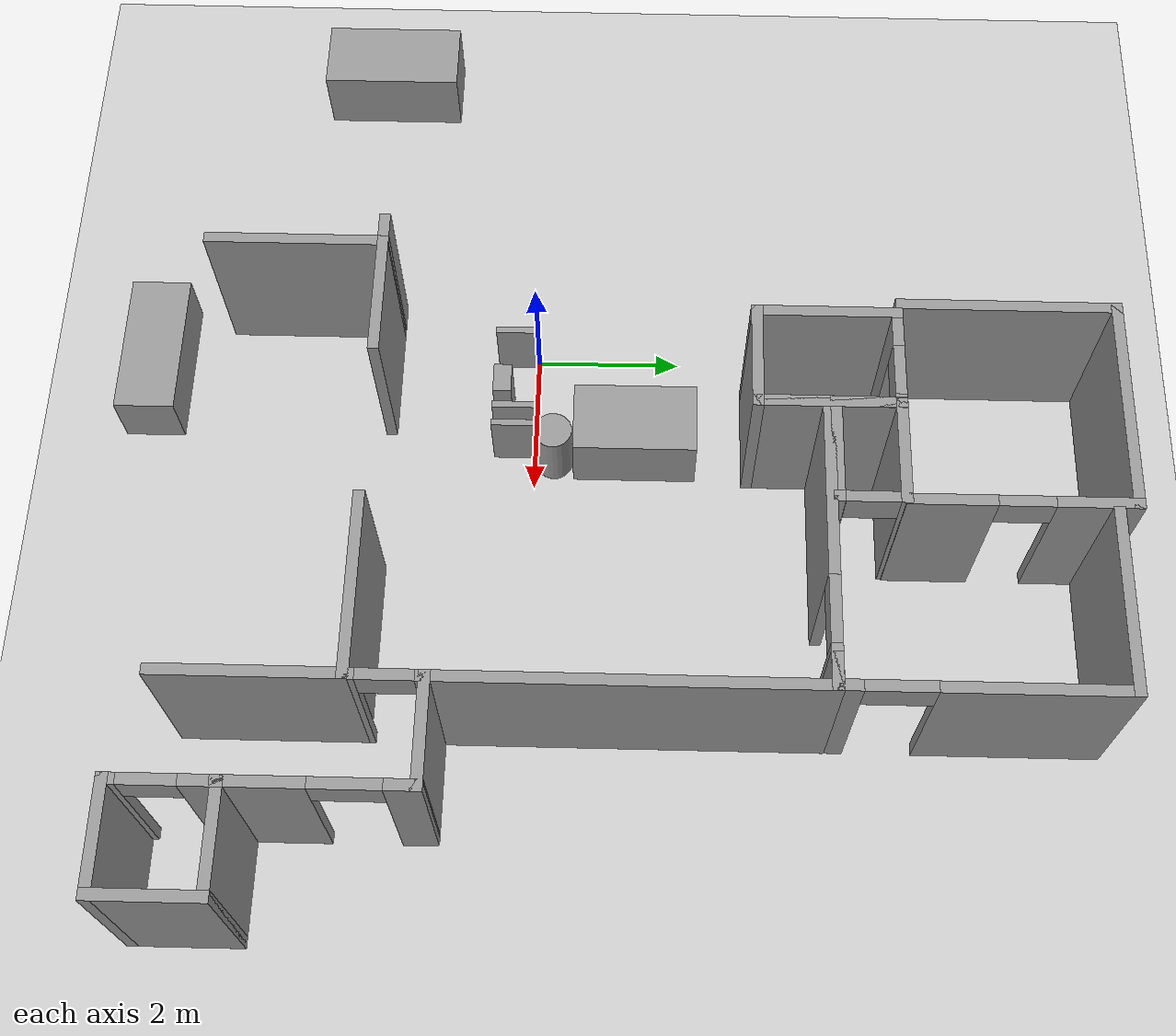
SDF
<sdf version="1.9">
 <world name="default">
  <model name="ground_plane">
   <static>true</static>
   <link name="link">
    <collision name="collision">
     <geometry><plane><normal>0 0 1</normal><size>100 100</size></plane></geometry>
     <surface><friction><ode><mu>100</mu><mu2>50</mu2></ode></friction></surface>
    </collision>
    <visual name="visual">
     <cast_shadows>false</cast_shadows>
     <geometry><plane><normal>0 0 1</normal><size>100 100</size></plane></geometry>
     <material>
      <script><uri>file://media/materials/scripts/gazebo.material</uri><name>Gazebo/Grey</name></script>
     </material>
    </visual>
   </link>
  </model>
  <model name="cma_parede_t">
   <pose>0.15995500000000001 -3.2401599999999999 0 0 0 0</pose>
   <link name="Wall_15">
    <collision name="Wall_15_Collision">
     <geometry><box><size>2.5 0.14999999999999999 2.5</size></box></geometry>
     <pose>0 0 1.25 0 0 0</pose>
    </collision>
    <visual name="Wall_15_Visual">
     <pose>0 0 1.25 0 0 0</pose>
     <geometry><box><size>2.5 0.14999999999999999 2.5</size></box></geometry>
     <material>
      <script><uri>file://media/materials/scripts/gazebo.material</uri><name>Gazebo/Grey</name></script>
      <ambient>1 1 1 1</ambient>
     </material>
    </visual>
    <pose>-0.625 0 0 0 0 1.5708</pose>
   </link>
   <link name="Wall_16">
    <collision name="Wall_16_Collision">
     <geometry><box><size>0.5 0.14999999999999999 2.5</size></box></geometry>
     <pose>0 0 1.25 0 0 0</pose>
    </collision>
    <visual name="Wall_16_Visual">
     <pose>0 0 1.25 0 0 0</pose>
     <geometry><box><size>0.5 0.14999999999999999 2.5</size></box></geometry>
     <material>
      <script><uri>file://media/materials/scripts/gazebo.material</uri><name>Gazebo/Grey</name></script>
      <ambient>1 1 1 1</ambient>
     </material>
    </visual>
    <pose>-0.80000000000000004 1.175 0 0 0 3.1415899999999999</pose>
   </link>
   <link name="Wall_18">
    <collision name="Wall_18_Collision">
     <geometry><box><size>1.75 0.14999999999999999 2.5</size></box></geometry>
     <pose>0 0 1.25 0 0 0</pose>
    </collision>
    <visual name="Wall_18_Visual">
     <pose>0 0 1.25 0 0 0</pose>
     <geometry><box><size>1.75 0.14999999999999999 2.5</size></box></geometry>
     <material>
      <script><uri>file://media/materials/scripts/gazebo.material</uri><name>Gazebo/Grey</name></script>
      <ambient>1 1 1 1</ambient>
     </material>
    </visual>
    <pose>0.17499999999999999 1.175 0 0 0 0</pose>
   </link>
   <static>true</static>
  </model>
  <model name="cma_lavabo">
   <pose>7.7229700000000001 -4.0930200000000001 0 0 0 0</pose>
   <link name="Wall_4">
    <pose>-0.67500000000000004 0 0 0 0 1.5708</pose>
    <visual name="Wall_4_Visual_0">
     <pose>-0.63500000000000001 0 1.25 0 0 0</pose>
     <geometry><box><size>0.23000000000000001 0.14999999999999999 2.5</size></box></geometry>
     <material>
      <script><uri>file://media/materials/scripts/gazebo.material</uri><name>Gazebo/Grey</name></script>
      <ambient>1 1 1 1</ambient>
     </material>
    </visual>
    <collision name="Wall_4_Collision_0">
     <geometry><box><size>0.23000000000000001 0.14999999999999999 2.5</size></box></geometry>
     <pose>-0.63500000000000001 0 1.25 0 0 0</pose>
    </collision>
    <visual name="Wall_4_Visual_1">
     <pose>0.47999999999999998 0 1.25 0 0 0</pose>
     <geometry><box><size>0.54000000000000004 0.14999999999999999 2.5</size></box></geometry>
     <material>
      <script><uri>file://media/materials/scripts/gazebo.material</uri><name>Gazebo/Grey</name></script>
      <ambient>1 1 1 1</ambient>
     </material>
    </visual>
    <collision name="Wall_4_Collision_1">
     <geometry><box><size>0.54000000000000004 0.14999999999999999 2.5</size></box></geometry>
     <pose>0.47999999999999998 0 1.25 0 0 0</pose>
    </collision>
    <visual name="Wall_4_Visual_2">
     <pose>-0.155 0 2.25 0 0 0</pose>
     <geometry><box><size>0.72999999999999998 0.14999999999999999 0.5</size></box></geometry>
     <material>
      <script><uri>file://media/materials/scripts/gazebo.material</uri><name>Gazebo/Grey</name></script>
      <ambient>1 1 1 1</ambient>
     </material>
    </visual>
    <collision name="Wall_4_Collision_2">
     <geometry><box><size>0.72999999999999998 0.14999999999999999 0.5</size></box></geometry>
     <pose>-0.155 0 2.25 0 0 0</pose>
    </collision>
   </link>
   <link name="Wall_5">
    <collision name="Wall_5_Collision">
     <geometry><box><size>1.5 0.14999999999999999 2.5</size></box></geometry>
     <pose>0 0 1.25 0 0 0</pose>
    </collision>
    <visual name="Wall_5_Visual">
     <pose>0 0 1.25 0 0 0</pose>
     <geometry><box><size>1.5 0.14999999999999999 2.5</size></box></geometry>
     <material>
      <script><uri>file://media/materials/scripts/gazebo.material</uri><name>Gazebo/Grey</name></script>
      <ambient>1 1 1 1</ambient>
     </material>
    </visual>
    <pose>0 0.67500000000000004 0 0 0 0</pose>
   </link>
   <link name="Wall_6">
    <collision name="Wall_6_Collision">
     <geometry><box><size>1.5 0.14999999999999999 2.5</size></box></geometry>
     <pose>0 0 1.25 0 0 0</pose>
    </collision>
    <visual name="Wall_6_Visual">
     <pose>0 0 1.25 0 0 0</pose>
     <geometry><box><size>1.5 0.14999999999999999 2.5</size></box></geometry>
     <material>
      <script><uri>file://media/materials/scripts/gazebo.material</uri><name>Gazebo/Grey</name></script>
      <ambient>1 1 1 1</ambient>
     </material>
    </visual>
    <pose>0.67500000000000004 0 0 0 0 -1.5708</pose>
   </link>
   <link name="Wall_7">
    <collision name="Wall_7_Collision">
     <geometry><box><size>1.5 0.14999999999999999 2.5</size></box></geometry>
     <pose>0 0 1.25 0 0 0</pose>
    </collision>
    <visual name="Wall_7_Visual">
     <pose>0 0 1.25 0 0 0</pose>
     <geometry><box><size>1.5 0.14999999999999999 2.5</size></box></geometry>
     <material>
      <script><uri>file://media/materials/scripts/gazebo.material</uri><name>Gazebo/Grey</name></script>
      <ambient>1 1 1 1</ambient>
     </material>
    </visual>
    <pose>0 -0.67500000000000004 0 0 0 3.1415899999999999</pose>
   </link>
   <static>true</static>
  </model>
  <model name="cma_L2">
   <pose>4.5168299999999997 -3.24587 0 0 0 0</pose>
   <link name="Wall_10">
    <collision name="Wall_10_Collision">
     <geometry><box><size>2.5 0.14999999999999999 2.5</size></box></geometry>
     <pose>0 0 1.25 0 0 0</pose>
    </collision>
    <visual name="Wall_10_Visual">
     <pose>0 0 1.25 0 0 0</pose>
     <geometry><box><size>2.5 0.14999999999999999 2.5</size></box></geometry>
     <material>
      <script><uri>file://media/materials/scripts/gazebo.material</uri><name>Gazebo/Grey</name></script>
      <ambient>1 1 1 1</ambient>
     </material>
    </visual>
    <pose>1.175 0 0 0 0 -1.5708</pose>
   </link>
   <link name="Wall_9">
    <collision name="Wall_9_Collision">
     <geometry><box><size>2.5 0.14999999999999999 2.5</size></box></geometry>
     <pose>0 0 1.25 0 0 0</pose>
    </collision>
    <visual name="Wall_9_Visual">
     <pose>0 0 1.25 0 0 0</pose>
     <geometry><box><size>2.5 0.14999999999999999 2.5</size></box></geometry>
     <material>
      <script><uri>file://media/materials/scripts/gazebo.material</uri><name>Gazebo/Grey</name></script>
      <ambient>1 1 1 1</ambient>
     </material>
    </visual>
    <pose>0 1.175 0 0 0 0</pose>
   </link>
   <static>true</static>
  </model>
  <model name="cma_L3">
   <pose>6.3722099999999999 -2.2602199999999999 0 0 0 0</pose>
   <link name="Wall_12">
    <pose>-0.67500000000000004 0.75 0 0 0 1.5708</pose>
    <visual name="Wall_12_Visual_0">
     <pose>-0.46000000000000002 0 1.25 0 0 0</pose>
     <geometry><box><size>0.080000000000000002 0.14999999999999999 2.5</size></box></geometry>
     <material>
      <script><uri>file://media/materials/scripts/gazebo.material</uri><name>Gazebo/Grey</name></script>
      <ambient>1 1 1 1</ambient>
     </material>
    </visual>
    <collision name="Wall_12_Collision_0">
     <geometry><box><size>0.080000000000000002 0.14999999999999999 2.5</size></box></geometry>
     <pose>-0.46000000000000002 0 1.25 0 0 0</pose>
    </collision>
    <visual name="Wall_12_Visual_1">
     <pose>0.40500000000000003 0 1.25 0 0 0</pose>
     <geometry><box><size>0.19 0.14999999999999999 2.5</size></box></geometry>
     <material>
      <script><uri>file://media/materials/scripts/gazebo.material</uri><name>Gazebo/Grey</name></script>
      <ambient>1 1 1 1</ambient>
     </material>
    </visual>
    <collision name="Wall_12_Collision_1">
     <geometry><box><size>0.19 0.14999999999999999 2.5</size></box></geometry>
     <pose>0.40500000000000003 0 1.25 0 0 0</pose>
    </collision>
    <visual name="Wall_12_Visual_2">
     <pose>-0.055 0 2.25 0 0 0</pose>
     <geometry><box><size>0.72999999999999998 0.14999999999999999 0.5</size></box></geometry>
     <material>
      <script><uri>file://media/materials/scripts/gazebo.material</uri><name>Gazebo/Grey</name></script>
      <ambient>1 1 1 1</ambient>
     </material>
    </visual>
    <collision name="Wall_12_Collision_2">
     <geometry><box><size>0.72999999999999998 0.14999999999999999 0.5</size></box></geometry>
     <pose>-0.055 0 2.25 0 0 0</pose>
    </collision>
   </link>
   <link name="Wall_13">
    <collision name="Wall_13_Collision">
     <geometry><box><size>1.5 0.14999999999999999 2.5</size></box></geometry>
     <pose>0 0 1.25 0 0 0</pose>
    </collision>
    <visual name="Wall_13_Visual">
     <pose>0 0 1.25 0 0 0</pose>
     <geometry><box><size>1.5 0.14999999999999999 2.5</size></box></geometry>
     <material>
      <script><uri>file://media/materials/scripts/gazebo.material</uri><name>Gazebo/Grey</name></script>
      <ambient>1 1 1 1</ambient>
     </material>
    </visual>
    <pose>0 1.175 0 0 0 0</pose>
   </link>
   <link name="Wall_14">
    <pose>0.67500000000000004 0 0 0 0 -1.5708</pose>
    <visual name="Wall_14_Visual_0">
     <pose>-1.0175000000000001 0 1.25 0 0 0</pose>
     <geometry><box><size>0.46500000000000002 0.14999999999999999 2.5</size></box></geometry>
     <material>
      <script><uri>file://media/materials/scripts/gazebo.material</uri><name>Gazebo/Grey</name></script>
      <ambient>1 1 1 1</ambient>
     </material>
    </visual>
    <collision name="Wall_14_Collision_0">
     <geometry><box><size>0.46500000000000002 0.14999999999999999 2.5</size></box></geometry>
     <pose>-1.0175000000000001 0 1.25 0 0 0</pose>
    </collision>
    <visual name="Wall_14_Visual_1">
     <pose>0.6825 0 1.25 0 0 0</pose>
     <geometry><box><size>1.135 0.14999999999999999 2.5</size></box></geometry>
     <material>
      <script><uri>file://media/materials/scripts/gazebo.material</uri><name>Gazebo/Grey</name></script>
      <ambient>1 1 1 1</ambient>
     </material>
    </visual>
    <collision name="Wall_14_Collision_1">
     <geometry><box><size>1.135 0.14999999999999999 2.5</size></box></geometry>
     <pose>0.6825 0 1.25 0 0 0</pose>
    </collision>
    <visual name="Wall_14_Visual_2">
     <pose>-0.33500000000000002 0 2.25 0 0 0</pose>
     <geometry><box><size>0.90000000000000002 0.14999999999999999 0.5</size></box></geometry>
     <material>
      <script><uri>file://media/materials/scripts/gazebo.material</uri><name>Gazebo/Grey</name></script>
      <ambient>1 1 1 1</ambient>
     </material>
    </visual>
    <collision name="Wall_14_Collision_2">
     <geometry><box><size>0.90000000000000002 0.14999999999999999 0.5</size></box></geometry>
     <pose>-0.33500000000000002 0 2.25 0 0 0</pose>
    </collision>
   </link>
   <static>true</static>
  </model>
  <model name="cma_L5">
   <pose>3.77502 1.45512 0 0 0 0</pose>
   <link name="Wall_0">
    <collision name="Wall_0_Collision">
     <geometry><box><size>1 0.14999999999999999 2.5</size></box></geometry>
     <pose>0 0 1.25 0 0 0</pose>
    </collision>
    <visual name="Wall_0_Visual">
     <pose>0 0 1.25 0 0 0</pose>
     <geometry><box><size>1 0.14999999999999999 2.5</size></box></geometry>
     <material>
      <script><uri>file://media/materials/scripts/gazebo.material</uri><name>Gazebo/Grey</name></script>
      <ambient>1 1 1 1</ambient>
     </material>
    </visual>
    <pose>-1.925 2 0 0 0 1.5708</pose>
   </link>
   <link name="Wall_1">
    <pose>0 2.4249999999999998 0 0 0 0</pose>
    <visual name="Wall_1_Visual_0">
     <pose>-0.75249999999999995 0 1.25 0 0 0</pose>
     <geometry><box><size>2.4950000000000001 0.14999999999999999 2.5</size></box></geometry>
     <material>
      <script><uri>file://media/materials/scripts/gazebo.material</uri><name>Gazebo/Grey</name></script>
      <ambient>1 1 1 1</ambient>
     </material>
    </visual>
    <collision name="Wall_1_Collision_0">
     <geometry><box><size>2.4950000000000001 0.14999999999999999 2.5</size></box></geometry>
     <pose>-0.75249999999999995 0 1.25 0 0 0</pose>
    </collision>
    <visual name="Wall_1_Visual_1">
     <pose>1.6975 0 1.25 0 0 0</pose>
     <geometry><box><size>0.60499999999999998 0.14999999999999999 2.5</size></box></geometry>
     <material>
      <script><uri>file://media/materials/scripts/gazebo.material</uri><name>Gazebo/Grey</name></script>
      <ambient>1 1 1 1</ambient>
     </material>
    </visual>
    <collision name="Wall_1_Collision_1">
     <geometry><box><size>0.60499999999999998 0.14999999999999999 2.5</size></box></geometry>
     <pose>1.6975 0 1.25 0 0 0</pose>
    </collision>
    <visual name="Wall_1_Visual_2">
     <pose>0.94499999999999995 0 2.25 0 0 0</pose>
     <geometry><box><size>0.90000000000000002 0.14999999999999999 0.5</size></box></geometry>
     <material>
      <script><uri>file://media/materials/scripts/gazebo.material</uri><name>Gazebo/Grey</name></script>
      <ambient>1 1 1 1</ambient>
     </material>
    </visual>
    <collision name="Wall_1_Collision_2">
     <geometry><box><size>0.90000000000000002 0.14999999999999999 0.5</size></box></geometry>
     <pose>0.94499999999999995 0 2.25 0 0 0</pose>
    </collision>
   </link>
   <link name="Wall_3">
    <collision name="Wall_3_Collision">
     <geometry><box><size>5 0.14999999999999999 2.5</size></box></geometry>
     <pose>0 0 1.25 0 0 0</pose>
    </collision>
    <visual name="Wall_3_Visual">
     <pose>0 0 1.25 0 0 0</pose>
     <geometry><box><size>5 0.14999999999999999 2.5</size></box></geometry>
     <material>
      <script><uri>file://media/materials/scripts/gazebo.material</uri><name>Gazebo/Grey</name></script>
      <ambient>1 1 1 1</ambient>
     </material>
    </visual>
    <pose>1.925 0 0 0 0 -1.5708</pose>
   </link>
   <static>true</static>
  </model>
  <model name="cma_dispensa">
   <pose>2.5258400000000001 4.4011899999999997 0 0 0 0</pose>
   <link name="Wall_5">
    <collision name="Wall_5_Collision">
     <geometry><box><size>1 0.14999999999999999 2.5</size></box></geometry>
     <pose>0 0 1.25 0 0 0</pose>
    </collision>
    <visual name="Wall_5_Visual">
     <pose>0 0 1.25 0 0 0</pose>
     <geometry><box><size>1 0.14999999999999999 2.5</size></box></geometry>
     <material>
      <script><uri>file://media/materials/scripts/gazebo.material</uri><name>Gazebo/Grey</name></script>
      <ambient>1 1 1 1</ambient>
     </material>
    </visual>
    <pose>-0.67500000000000004 0 0 0 0 1.5708</pose>
   </link>
   <link name="Wall_6">
    <collision name="Wall_6_Collision">
     <geometry><box><size>1.5 0.14999999999999999 2.5</size></box></geometry>
     <pose>0 0 1.25 0 0 0</pose>
    </collision>
    <visual name="Wall_6_Visual">
     <pose>0 0 1.25 0 0 0</pose>
     <geometry><box><size>1.5 0.14999999999999999 2.5</size></box></geometry>
     <material>
      <script><uri>file://media/materials/scripts/gazebo.material</uri><name>Gazebo/Grey</name></script>
      <ambient>1 1 1 1</ambient>
     </material>
    </visual>
    <pose>0 0.42499999999999999 0 0 0 0</pose>
   </link>
   <link name="Wall_7">
    <pose>0.67500000000000004 0 0 0 0 -1.5708</pose>
    <visual name="Wall_7_Visual_0">
     <pose>-0.42749999999999999 0 1.25 0 0 0</pose>
     <geometry><box><size>0.14499999999999999 0.14999999999999999 2.5</size></box></geometry>
     <material>
      <script><uri>file://media/materials/scripts/gazebo.material</uri><name>Gazebo/Grey</name></script>
      <ambient>1 1 1 1</ambient>
     </material>
    </visual>
    <collision name="Wall_7_Collision_0">
     <geometry><box><size>0.14499999999999999 0.14999999999999999 2.5</size></box></geometry>
     <pose>-0.42749999999999999 0 1.25 0 0 0</pose>
    </collision>
    <visual name="Wall_7_Visual_1">
     <pose>0.42249999999999999 0 1.25 0 0 0</pose>
     <geometry><box><size>0.155 0.14999999999999999 2.5</size></box></geometry>
     <material>
      <script><uri>file://media/materials/scripts/gazebo.material</uri><name>Gazebo/Grey</name></script>
      <ambient>1 1 1 1</ambient>
     </material>
    </visual>
    <collision name="Wall_7_Collision_1">
     <geometry><box><size>0.155 0.14999999999999999 2.5</size></box></geometry>
     <pose>0.42249999999999999 0 1.25 0 0 0</pose>
    </collision>
    <visual name="Wall_7_Visual_2">
     <pose>-0.0050000000000000001 0 2.25 0 0 0</pose>
     <geometry><box><size>0.69999999999999996 0.14999999999999999 0.5</size></box></geometry>
     <material>
      <script><uri>file://media/materials/scripts/gazebo.material</uri><name>Gazebo/Grey</name></script>
      <ambient>1 1 1 1</ambient>
     </material>
    </visual>
    <collision name="Wall_7_Collision_2">
     <geometry><box><size>0.69999999999999996 0.14999999999999999 0.5</size></box></geometry>
     <pose>-0.0050000000000000001 0 2.25 0 0 0</pose>
    </collision>
   </link>
   <link name="Wall_8">
    <collision name="Wall_8_Collision">
     <geometry><box><size>1.5 0.14999999999999999 2.5</size></box></geometry>
     <pose>0 0 1.25 0 0 0</pose>
    </collision>
    <visual name="Wall_8_Visual">
     <pose>0 0 1.25 0 0 0</pose>
     <geometry><box><size>1.5 0.14999999999999999 2.5</size></box></geometry>
     <material>
      <script><uri>file://media/materials/scripts/gazebo.material</uri><name>Gazebo/Grey</name></script>
      <ambient>1 1 1 1</ambient>
     </material>
    </visual>
    <pose>0 -0.42499999999999999 0 0 0 3.1415899999999999</pose>
   </link>
   <static>true</static>
  </model>
  <model name="cma_banheiro_e">
   <pose>1.1835800000000001 3.89879 0 0 0 0</pose>
   <link name="Wall_10">
    <collision name="Wall_10_Collision">
     <geometry><box><size>1.5 0.14999999999999999 2.5</size></box></geometry>
     <pose>0 0 1.25 0 0 0</pose>
    </collision>
    <visual name="Wall_10_Visual">
     <pose>0 0 1.25 0 0 0</pose>
     <geometry><box><size>1.5 0.14999999999999999 2.5</size></box></geometry>
     <material>
      <script><uri>file://media/materials/scripts/gazebo.material</uri><name>Gazebo/Grey</name></script>
      <ambient>1 1 1 1</ambient>
     </material>
    </visual>
    <pose>0 -0.92500000000000004 0 0 0 3.1415899999999999</pose>
   </link>
   <link name="Wall_11">
    <collision name="Wall_11_Collision">
     <geometry><box><size>2 0.14999999999999999 2.5</size></box></geometry>
     <pose>0 0 1.25 0 0 0</pose>
    </collision>
    <visual name="Wall_11_Visual">
     <pose>0 0 1.25 0 0 0</pose>
     <geometry><box><size>2 0.14999999999999999 2.5</size></box></geometry>
     <material>
      <script><uri>file://media/materials/scripts/gazebo.material</uri><name>Gazebo/Grey</name></script>
      <ambient>1 1 1 1</ambient>
     </material>
    </visual>
    <pose>-0.67500000000000004 0 0 0 0 1.5708</pose>
   </link>
   <link name="Wall_12">
    <pose>0 0.92500000000000004 0 0 0 0</pose>
    <visual name="Wall_12_Visual_0">
     <pose>-0.46250000000000002 0 1.25 0 0 0</pose>
     <geometry><box><size>0.57499999999999996 0.14999999999999999 2.5</size></box></geometry>
     <material>
      <script><uri>file://media/materials/scripts/gazebo.material</uri><name>Gazebo/Grey</name></script>
      <ambient>1 1 1 1</ambient>
     </material>
    </visual>
    <collision name="Wall_12_Collision_0">
     <geometry><box><size>0.57499999999999996 0.14999999999999999 2.5</size></box></geometry>
     <pose>-0.46250000000000002 0 1.25 0 0 0</pose>
    </collision>
    <visual name="Wall_12_Visual_1">
     <pose>0.64749999999999996 0 1.25 0 0 0</pose>
     <geometry><box><size>0.20499999999999999 0.14999999999999999 2.5</size></box></geometry>
     <material>
      <script><uri>file://media/materials/scripts/gazebo.material</uri><name>Gazebo/Grey</name></script>
      <ambient>1 1 1 1</ambient>
     </material>
    </visual>
    <collision name="Wall_12_Collision_1">
     <geometry><box><size>0.20499999999999999 0.14999999999999999 2.5</size></box></geometry>
     <pose>0.64749999999999996 0 1.25 0 0 0</pose>
    </collision>
    <visual name="Wall_12_Visual_2">
     <pose>0.185 0 2.25 0 0 0</pose>
     <geometry><box><size>0.71999999999999997 0.14999999999999999 0.5</size></box></geometry>
     <material>
      <script><uri>file://media/materials/scripts/gazebo.material</uri><name>Gazebo/Grey</name></script>
      <ambient>1 1 1 1</ambient>
     </material>
    </visual>
    <collision name="Wall_12_Collision_2">
     <geometry><box><size>0.71999999999999997 0.14999999999999999 0.5</size></box></geometry>
     <pose>0.185 0 2.25 0 0 0</pose>
    </collision>
   </link>
   <link name="Wall_13">
    <collision name="Wall_13_Collision">
     <geometry><box><size>2 0.14999999999999999 2.5</size></box></geometry>
     <pose>0 0 1.25 0 0 0</pose>
    </collision>
    <visual name="Wall_13_Visual">
     <pose>0 0 1.25 0 0 0</pose>
     <geometry><box><size>2 0.14999999999999999 2.5</size></box></geometry>
     <material>
      <script><uri>file://media/materials/scripts/gazebo.material</uri><name>Gazebo/Grey</name></script>
      <ambient>1 1 1 1</ambient>
     </material>
    </visual>
    <pose>0.67500000000000004 0 0 0 0 -1.5708</pose>
   </link>
   <static>true</static>
  </model>
  <model name="cma_qe">
   <pose>1.7956099999999999 6.3122800000000003 0 0 0 0</pose>
   <link name="Wall_15">
    <collision name="Wall_15_Collision">
     <geometry><box><size>3 0.14999999999999999 2.5</size></box></geometry>
     <pose>0 0 1.25 0 0 0</pose>
    </collision>
    <visual name="Wall_15_Visual">
     <pose>0 0 1.25 0 0 0</pose>
     <geometry><box><size>3 0.14999999999999999 2.5</size></box></geometry>
     <material>
      <script><uri>file://media/materials/scripts/gazebo.material</uri><name>Gazebo/Grey</name></script>
      <ambient>1 1 1 1</ambient>
     </material>
    </visual>
    <pose>-1.425 0 0 0 0 1.5708</pose>
   </link>
   <link name="Wall_16">
    <collision name="Wall_16_Collision">
     <geometry><box><size>3 0.14999999999999999 2.5</size></box></geometry>
     <pose>0 0 1.25 0 0 0</pose>
    </collision>
    <visual name="Wall_16_Visual">
     <pose>0 0 1.25 0 0 0</pose>
     <geometry><box><size>3 0.14999999999999999 2.5</size></box></geometry>
     <material>
      <script><uri>file://media/materials/scripts/gazebo.material</uri><name>Gazebo/Grey</name></script>
      <ambient>1 1 1 1</ambient>
     </material>
    </visual>
    <pose>0 1.425 0 0 0 0</pose>
   </link>
   <link name="Wall_17">
    <pose>1.425 0 0 0 0 -1.5708</pose>
    <visual name="Wall_17_Visual_0">
     <pose>-0.94499999999999995 0 1.25 0 0 0</pose>
     <geometry><box><size>1.1100000000000001 0.14999999999999999 2.5</size></box></geometry>
     <material>
      <script><uri>file://media/materials/scripts/gazebo.material</uri><name>Gazebo/Grey</name></script>
      <ambient>1 1 1 1</ambient>
     </material>
    </visual>
    <collision name="Wall_17_Collision_0">
     <geometry><box><size>1.1100000000000001 0.14999999999999999 2.5</size></box></geometry>
     <pose>-0.94499999999999995 0 1.25 0 0 0</pose>
    </collision>
    <visual name="Wall_17_Visual_1">
     <pose>0.92000000000000004 0 1.25 0 0 0</pose>
     <geometry><box><size>1.1599999999999999 0.14999999999999999 2.5</size></box></geometry>
     <material>
      <script><uri>file://media/materials/scripts/gazebo.material</uri><name>Gazebo/Grey</name></script>
      <ambient>1 1 1 1</ambient>
     </material>
    </visual>
    <collision name="Wall_17_Collision_1">
     <geometry><box><size>1.1599999999999999 0.14999999999999999 2.5</size></box></geometry>
     <pose>0.92000000000000004 0 1.25 0 0 0</pose>
    </collision>
    <visual name="Wall_17_Visual_2">
     <pose>-0.025000000000000001 0 2.25 0 0 0</pose>
     <geometry><box><size>0.72999999999999998 0.14999999999999999 0.5</size></box></geometry>
     <material>
      <script><uri>file://media/materials/scripts/gazebo.material</uri><name>Gazebo/Grey</name></script>
      <ambient>1 1 1 1</ambient>
     </material>
    </visual>
    <collision name="Wall_17_Collision_2">
     <geometry><box><size>0.72999999999999998 0.14999999999999999 0.5</size></box></geometry>
     <pose>-0.025000000000000001 0 2.25 0 0 0</pose>
    </collision>
   </link>
   <static>true</static>
  </model>
  <model name="cma_area2">
   <pose>4.5227500000000003 5.6786199999999996 0 0 0 0</pose>
   <link name="Wall_23">
    <collision name="Wall_23_Collision">
     <geometry><box><size>2.5 0.14999999999999999 2.5</size></box></geometry>
     <pose>0 0 1.25 0 0 0</pose>
    </collision>
    <visual name="Wall_23_Visual">
     <pose>0 0 1.25 0 0 0</pose>
     <geometry><box><size>2.5 0.14999999999999999 2.5</size></box></geometry>
     <material>
      <script><uri>file://media/materials/scripts/gazebo.material</uri><name>Gazebo/Grey</name></script>
      <ambient>1 1 1 1</ambient>
     </material>
    </visual>
    <pose>0 1.8 0 0 0 0</pose>
   </link>
   <link name="Wall_24">
    <pose>1.175 0 0 0 0 -1.5708</pose>
    <visual name="Wall_24_Visual_0">
     <pose>-0.64249999999999996 0 1.25 0 0 0</pose>
     <geometry><box><size>2.4649999999999999 0.14999999999999999 2.5</size></box></geometry>
     <material>
      <script><uri>file://media/materials/scripts/gazebo.material</uri><name>Gazebo/Grey</name></script>
      <ambient>1 1 1 1</ambient>
     </material>
    </visual>
    <collision name="Wall_24_Collision_0">
     <geometry><box><size>2.4649999999999999 0.14999999999999999 2.5</size></box></geometry>
     <pose>-0.64249999999999996 0 1.25 0 0 0</pose>
    </collision>
    <visual name="Wall_24_Visual_1">
     <pose>1.6825000000000001 0 1.25 0 0 0</pose>
     <geometry><box><size>0.38500000000000001 0.14999999999999999 2.5</size></box></geometry>
     <material>
      <script><uri>file://media/materials/scripts/gazebo.material</uri><name>Gazebo/Grey</name></script>
      <ambient>1 1 1 1</ambient>
     </material>
    </visual>
    <collision name="Wall_24_Collision_1">
     <geometry><box><size>0.38500000000000001 0.14999999999999999 2.5</size></box></geometry>
     <pose>1.6825000000000001 0 1.25 0 0 0</pose>
    </collision>
    <visual name="Wall_24_Visual_2">
     <pose>1.04 0 2.25 0 0 0</pose>
     <geometry><box><size>0.90000000000000002 0.14999999999999999 0.5</size></box></geometry>
     <material>
      <script><uri>file://media/materials/scripts/gazebo.material</uri><name>Gazebo/Grey</name></script>
      <ambient>1 1 1 1</ambient>
     </material>
    </visual>
    <collision name="Wall_24_Collision_2">
     <geometry><box><size>0.90000000000000002 0.14999999999999999 0.5</size></box></geometry>
     <pose>1.04 0 2.25 0 0 0</pose>
    </collision>
   </link>
   <link name="Wall_25">
    <collision name="Wall_25_Collision">
     <geometry><box><size>0.5 0.14999999999999999 2.5</size></box></geometry>
     <pose>0 0 1.25 0 0 0</pose>
    </collision>
    <visual name="Wall_25_Visual">
     <pose>0 0 1.25 0 0 0</pose>
     <geometry><box><size>0.5 0.14999999999999999 2.5</size></box></geometry>
     <material>
      <script><uri>file://media/materials/scripts/gazebo.material</uri><name>Gazebo/Grey</name></script>
      <ambient>1 1 1 1</ambient>
     </material>
    </visual>
    <pose>1 -1.8 0 0 0 3.1415899999999999</pose>
   </link>
   <static>true</static>
  </model>
  <model name="cma_mesa_pc">
   <link name="link_0">
    <pose>-1.3653299999999999 -0.59986600000000001 0 0 0 0</pose>
    <inertial>
     <mass>0.055153899999999999</mass>
     <inertia>
      <ixx>0.00617776</ixx>
      <ixy>0</ixy>
      <ixz>0</ixz>
      <iyy>0.0046367999999999999</iyy>
      <iyz>0</iyz>
      <izz>0.00162222</izz>
     </inertia>
    </inertial>
    <visual name="visual">
     <geometry><box><size>0.094007999999999994 0.58662599999999998 1</size></box></geometry>
     <material>
      <lighting>true</lighting>
      <script><uri>file://media/materials/scripts/gazebo.material</uri><name>Gazebo/Grey</name></script>
      <ambient>0.300000012 0.300000012 0.300000012 1</ambient>
      <diffuse>0.699999988 0.699999988 0.699999988 1</diffuse>
      <specular>0.00999999978 0.00999999978 0.00999999978 1</specular>
      <emissive>0 0 0 1</emissive>
     </material>
    </visual>
    <collision name="collision">
     <geometry><box><size>0.094007999999999994 0.58662599999999998 1</size></box></geometry>
     <surface>
      <friction>
       <ode><mu>1</mu><mu2>1</mu2><fdir1>0 0 0</fdir1><slip1>0</slip1><slip2>0</slip2></ode>
       <torsional>
        <coefficient>1</coefficient>
        <patch_radius>0</patch_radius>
        <surface_radius>0</surface_radius>
        <use_patch_radius>true</use_patch_radius>
        <ode><slip>0</slip></ode>
       </torsional>
      </friction>
      <bounce><restitution_coefficient>0</restitution_coefficient><threshold>1000000</threshold></bounce>
      <contact>
       <collide_without_contact>false</collide_without_contact>
       <collide_without_contact_bitmask>1</collide_without_contact_bitmask>
       <collide_bitmask>1</collide_bitmask>
       <ode>
        <soft_cfm>0</soft_cfm>
        <soft_erp>0.20000000000000001</soft_erp>
        <kp>10000000000000</kp>
        <kd>1</kd>
        <max_vel>0.01</max_vel>
        <min_depth>0</min_depth>
       </ode>
       <bullet>
        <split_impulse>true</split_impulse>
        <split_impulse_penetration_threshold>-0.01</split_impulse_penetration_threshold>
        <soft_cfm>0</soft_cfm>
        <soft_erp>0.20000000000000001</soft_erp>
        <kp>10000000000000</kp>
        <kd>1</kd>
       </bullet>
      </contact>
     </surface>
    </collision>
   </link>
   <link name="link_0_clone">
    <pose>-0.18005299999999999 -0.60318099999999997 0 0 0 0</pose>
    <inertial>
     <mass>0.055153899999999999</mass>
     <inertia>
      <ixx>0.00617776</ixx>
      <ixy>0</ixy>
      <ixz>0</ixz>
      <iyy>0.0046367999999999999</iyy>
      <iyz>0</iyz>
      <izz>0.00162222</izz>
     </inertia>
    </inertial>
    <visual name="visual">
     <geometry><box><size>0.094007999999999994 0.58662599999999998 1</size></box></geometry>
     <material>
      <lighting>true</lighting>
      <script><uri>file://media/materials/scripts/gazebo.material</uri><name>Gazebo/Grey</name></script>
      <ambient>0.300000012 0.300000012 0.300000012 1</ambient>
      <diffuse>0.699999988 0.699999988 0.699999988 1</diffuse>
      <specular>0.00999999978 0.00999999978 0.00999999978 1</specular>
      <emissive>0 0 0 1</emissive>
      <shader type="pixel"/>
     </material>
    </visual>
    <collision name="collision">
     <geometry><box><size>0.094007999999999994 0.58662599999999998 1</size></box></geometry>
     <surface>
      <friction>
       <ode><mu>1</mu><mu2>1</mu2><fdir1>0 0 0</fdir1><slip1>0</slip1><slip2>0</slip2></ode>
       <torsional>
        <coefficient>1</coefficient>
        <patch_radius>0</patch_radius>
        <surface_radius>0</surface_radius>
        <use_patch_radius>true</use_patch_radius>
        <ode><slip>0</slip></ode>
       </torsional>
      </friction>
      <bounce><restitution_coefficient>0</restitution_coefficient><threshold>1000000</threshold></bounce>
      <contact>
       <collide_without_contact>false</collide_without_contact>
       <collide_without_contact_bitmask>1</collide_without_contact_bitmask>
       <collide_bitmask>1</collide_bitmask>
       <ode>
        <soft_cfm>0</soft_cfm>
        <soft_erp>0.20000000000000001</soft_erp>
        <kp>10000000000000</kp>
        <kd>1</kd>
        <max_vel>0.01</max_vel>
        <min_depth>0</min_depth>
       </ode>
       <bullet>
        <split_impulse>true</split_impulse>
        <split_impulse_penetration_threshold>-0.01</split_impulse_penetration_threshold>
        <soft_cfm>0</soft_cfm>
        <soft_erp>0.20000000000000001</soft_erp>
        <kp>10000000000000</kp>
        <kd>1</kd>
       </bullet>
      </contact>
     </surface>
    </collision>
   </link>
   <link name="link_0_clone_clone">
    <pose>0.10173599999999999 -0.60185200000000005 0 0 0 0</pose>
    <inertial>
     <mass>0.055153899999999999</mass>
     <inertia>
      <ixx>0.00617776</ixx>
      <ixy>0</ixy>
      <ixz>0</ixz>
      <iyy>0.0046367999999999999</iyy>
      <iyz>0</iyz>
      <izz>0.00162222</izz>
     </inertia>
    </inertial>
    <visual name="visual">
     <geometry><box><size>0.094007999999999994 0.58662599999999998 1</size></box></geometry>
     <material>
      <lighting>true</lighting>
      <script><uri>file://media/materials/scripts/gazebo.material</uri><name>Gazebo/Grey</name></script>
      <ambient>0.300000012 0.300000012 0.300000012 1</ambient>
      <diffuse>0.699999988 0.699999988 0.699999988 1</diffuse>
      <specular>0.00999999978 0.00999999978 0.00999999978 1</specular>
      <emissive>0 0 0 1</emissive>
      <shader type="pixel"/>
     </material>
    </visual>
    <collision name="collision">
     <geometry><box><size>0.094007999999999994 0.58662599999999998 1</size></box></geometry>
     <surface>
      <friction>
       <ode><mu>1</mu><mu2>1</mu2><fdir1>0 0 0</fdir1><slip1>0</slip1><slip2>0</slip2></ode>
       <torsional>
        <coefficient>1</coefficient>
        <patch_radius>0</patch_radius>
        <surface_radius>0</surface_radius>
        <use_patch_radius>true</use_patch_radius>
        <ode><slip>0</slip></ode>
       </torsional>
      </friction>
      <bounce><restitution_coefficient>0</restitution_coefficient><threshold>1000000</threshold></bounce>
      <contact>
       <collide_without_contact>false</collide_without_contact>
       <collide_without_contact_bitmask>1</collide_without_contact_bitmask>
       <collide_bitmask>1</collide_bitmask>
       <ode>
        <soft_cfm>0</soft_cfm>
        <soft_erp>0.20000000000000001</soft_erp>
        <kp>10000000000000</kp>
        <kd>1</kd>
        <max_vel>0.01</max_vel>
        <min_depth>0</min_depth>
       </ode>
       <bullet>
        <split_impulse>true</split_impulse>
        <split_impulse_penetration_threshold>-0.01</split_impulse_penetration_threshold>
        <soft_cfm>0</soft_cfm>
        <soft_erp>0.20000000000000001</soft_erp>
        <kp>10000000000000</kp>
        <kd>1</kd>
       </bullet>
      </contact>
     </surface>
    </collision>
   </link>
   <static>false</static>
   <pose>1.3835599999999999 0.30795600000000001 0.49998900000000002 0 9.9999999999999995e-07 -0.0016410000000000001</pose>
  </model>
  <model name="cma_picador_0">
   <link name="link_2">
    <pose>-0.7258 -1.6910400000000001 0 0 0 0</pose>
    <inertial>
     <mass>0.10473200000000001</mass>
     <inertia>
      <ixx>0.0092790600000000004</ixx>
      <ixy>0</ixy>
      <ixz>0</ixz>
      <iyy>0.010243</iyy>
      <iyz>0</iyz>
      <izz>0.0020667200000000002</izz>
     </inertia>
    </inertial>
    <visual name="visual">
     <geometry><box><size>0.416688 0.25134000000000001 1</size></box></geometry>
     <material>
      <lighting>true</lighting>
      <script><uri>file://media/materials/scripts/gazebo.material</uri><name>Gazebo/Grey</name></script>
      <ambient>0.300000012 0.300000012 0.300000012 1</ambient>
      <diffuse>0.699999988 0.699999988 0.699999988 1</diffuse>
      <specular>0.00999999978 0.00999999978 0.00999999978 1</specular>
      <emissive>0 0 0 1</emissive>
     </material>
    </visual>
    <collision name="collision">
     <geometry><box><size>0.416688 0.25134000000000001 1</size></box></geometry>
     <surface>
      <friction>
       <ode><mu>1</mu><mu2>1</mu2><fdir1>0 0 0</fdir1><slip1>0</slip1><slip2>0</slip2></ode>
       <torsional>
        <coefficient>1</coefficient>
        <patch_radius>0</patch_radius>
        <surface_radius>0</surface_radius>
        <use_patch_radius>true</use_patch_radius>
        <ode><slip>0</slip></ode>
       </torsional>
      </friction>
      <bounce><restitution_coefficient>0</restitution_coefficient><threshold>1000000</threshold></bounce>
      <contact>
       <collide_without_contact>false</collide_without_contact>
       <collide_without_contact_bitmask>1</collide_without_contact_bitmask>
       <collide_bitmask>1</collide_bitmask>
       <ode>
        <soft_cfm>0</soft_cfm>
        <soft_erp>0.20000000000000001</soft_erp>
        <kp>10000000000000</kp>
        <kd>1</kd>
        <max_vel>0.01</max_vel>
        <min_depth>0</min_depth>
       </ode>
       <bullet>
        <split_impulse>true</split_impulse>
        <split_impulse_penetration_threshold>-0.01</split_impulse_penetration_threshold>
        <soft_cfm>0</soft_cfm>
        <soft_erp>0.20000000000000001</soft_erp>
        <kp>10000000000000</kp>
        <kd>1</kd>
       </bullet>
      </contact>
     </surface>
    </collision>
   </link>
   <static>false</static>
   <pose>1.51095 1.2279599999999999 0.50000500000000003 2.9999999999999997e-06 2.0000000000000003e-06 -0.00020799999999999999</pose>
  </model>
  <model name="cma_cesto">
   <link name="link_1">
    <pose>-0.32965899999999998 -1.55494 0 0 0 0</pose>
    <inertial>
     <mass>0.267897</mass>
     <inertia>
      <ixx>0.026810199999999999</ixx>
      <ixy>0</ixy>
      <ixz>0</ixz>
      <iyy>0.026810199999999999</iyy>
      <iyz>0</iyz>
      <izz>0.0089711099999999992</izz>
     </inertia>
    </inertial>
    <visual name="visual">
     <geometry><cylinder><radius>0.25879200000000002</radius><length>1</length></cylinder></geometry>
     <material>
      <lighting>true</lighting>
      <script><uri>file://media/materials/scripts/gazebo.material</uri><name>Gazebo/Grey</name></script>
      <ambient>0.300000012 0.300000012 0.300000012 1</ambient>
      <diffuse>0.699999988 0.699999988 0.699999988 1</diffuse>
      <specular>0.00999999978 0.00999999978 0.00999999978 1</specular>
      <emissive>0 0 0 1</emissive>
     </material>
    </visual>
    <collision name="collision">
     <geometry><cylinder><radius>0.25879200000000002</radius><length>1</length></cylinder></geometry>
     <surface>
      <friction>
       <ode><mu>1</mu><mu2>1</mu2><fdir1>0 0 0</fdir1><slip1>0</slip1><slip2>0</slip2></ode>
       <torsional>
        <coefficient>1</coefficient>
        <patch_radius>0</patch_radius>
        <surface_radius>0</surface_radius>
        <use_patch_radius>true</use_patch_radius>
        <ode><slip>0</slip></ode>
       </torsional>
      </friction>
      <bounce><restitution_coefficient>0</restitution_coefficient><threshold>1000000</threshold></bounce>
      <contact>
       <collide_without_contact>false</collide_without_contact>
       <collide_without_contact_bitmask>1</collide_without_contact_bitmask>
       <collide_bitmask>1</collide_bitmask>
       <ode>
        <soft_cfm>0</soft_cfm>
        <soft_erp>0.20000000000000001</soft_erp>
        <kp>10000000000000</kp>
        <kd>1</kd>
        <max_vel>0.01</max_vel>
        <min_depth>0</min_depth>
       </ode>
       <bullet>
        <split_impulse>true</split_impulse>
        <split_impulse_penetration_threshold>-0.01</split_impulse_penetration_threshold>
        <soft_cfm>0</soft_cfm>
        <soft_erp>0.20000000000000001</soft_erp>
        <kp>10000000000000</kp>
        <kd>1</kd>
       </bullet>
      </contact>
     </surface>
    </collision>
   </link>
   <static>false</static>
   <pose>1.94445 1.8207500000000001 0.499998 0 0 -0.013203000000000001</pose>
  </model>
  <model name="cma_sofa_2_lugares">
   <link name="link_0">
    <pose>-0.034013000000000002 -0.039828000000000002 0 0 0 0</pose>
    <inertial>
     <mass>1.6607099999999999</mass>
     <inertia>
      <ixx>0.53818299999999997</ixx>
      <ixy>0</ixy>
      <ixz>0</ixz>
      <iyy>0.27051900000000001</iyy>
      <iyz>0</iyz>
      <izz>0.53191500000000003</izz>
     </inertia>
    </inertial>
    <visual name="visual">
     <geometry><box><size>0.97714699999999999 1.6996800000000001 1</size></box></geometry>
     <material>
      <lighting>true</lighting>
      <script><uri>file://media/materials/scripts/gazebo.material</uri><name>Gazebo/Grey</name></script>
      <ambient>0.300000012 0.300000012 0.300000012 1</ambient>
      <diffuse>0.699999988 0.699999988 0.699999988 1</diffuse>
      <specular>0.00999999978 0.00999999978 0.00999999978 1</specular>
      <emissive>0 0 0 1</emissive>
     </material>
    </visual>
    <collision name="collision">
     <geometry><box><size>0.97714699999999999 1.6996800000000001 1</size></box></geometry>
     <surface>
      <friction>
       <ode><mu>1</mu><mu2>1</mu2><fdir1>0 0 0</fdir1><slip1>0</slip1><slip2>0</slip2></ode>
       <torsional>
        <coefficient>1</coefficient>
        <patch_radius>0</patch_radius>
        <surface_radius>0</surface_radius>
        <use_patch_radius>true</use_patch_radius>
        <ode><slip>0</slip></ode>
       </torsional>
      </friction>
      <bounce><restitution_coefficient>0</restitution_coefficient><threshold>1000000</threshold></bounce>
      <contact>
       <collide_without_contact>false</collide_without_contact>
       <collide_without_contact_bitmask>1</collide_without_contact_bitmask>
       <collide_bitmask>1</collide_bitmask>
       <ode>
        <soft_cfm>0</soft_cfm>
        <soft_erp>0.20000000000000001</soft_erp>
        <kp>10000000000000</kp>
        <kd>1</kd>
        <max_vel>0.01</max_vel>
        <min_depth>0</min_depth>
       </ode>
       <bullet>
        <split_impulse>true</split_impulse>
        <split_impulse_penetration_threshold>-0.01</split_impulse_penetration_threshold>
        <soft_cfm>0</soft_cfm>
        <soft_erp>0.20000000000000001</soft_erp>
        <kp>10000000000000</kp>
        <kd>1</kd>
       </bullet>
      </contact>
     </surface>
    </collision>
   </link>
   <static>false</static>
   <pose>1.3980600000000001 1.43302 0.49999900000000003 -1.0339757656933525e-25 -2.0000000000000008e-06 0.00051500000000000016</pose>
  </model>
  <model name="cma_sofa2">
   <link name="link_0">
    <pose>-4.6680000000000001 -2.0060099999999998 0.5 0 0 0</pose>
    <inertial>
     <mass>1.9868300000000001</mass>
     <inertia>
      <ixx>0.81914900000000002</ixx>
      <ixy>0</ixy>
      <ixz>0</ixz>
      <iyy>0.33113799999999999</iyy>
      <iyz>0</iyz>
      <izz>0.81914900000000002</izz>
     </inertia>
    </inertial>
    <visual name="visual">
     <geometry><box><size>1 1.98682 1</size></box></geometry>
     <material>
      <lighting>true</lighting>
      <script><uri>file://media/materials/scripts/gazebo.material</uri><name>Gazebo/Grey</name></script>
      <ambient>0.300000012 0.300000012 0.300000012 1</ambient>
      <diffuse>0.699999988 0.699999988 0.699999988 1</diffuse>
      <specular>0.00999999978 0.00999999978 0.00999999978 1</specular>
      <emissive>0 0 0 1</emissive>
     </material>
    </visual>
    <collision name="collision">
     <geometry><box><size>1 1.98682 1</size></box></geometry>
     <surface>
      <friction>
       <ode><mu>1</mu><mu2>1</mu2><fdir1>0 0 0</fdir1><slip1>0</slip1><slip2>0</slip2></ode>
       <torsional>
        <coefficient>1</coefficient>
        <patch_radius>0</patch_radius>
        <surface_radius>0</surface_radius>
        <use_patch_radius>true</use_patch_radius>
        <ode><slip>0</slip></ode>
       </torsional>
      </friction>
      <bounce><restitution_coefficient>0</restitution_coefficient><threshold>1000000</threshold></bounce>
      <contact>
       <collide_without_contact>false</collide_without_contact>
       <collide_without_contact_bitmask>1</collide_without_contact_bitmask>
       <collide_bitmask>1</collide_bitmask>
       <ode>
        <soft_cfm>0</soft_cfm>
        <soft_erp>0.20000000000000001</soft_erp>
        <kp>10000000000000</kp>
        <kd>1</kd>
        <max_vel>0.01</max_vel>
        <min_depth>0</min_depth>
       </ode>
       <bullet>
        <split_impulse>true</split_impulse>
        <split_impulse_penetration_threshold>-0.01</split_impulse_penetration_threshold>
        <soft_cfm>0</soft_cfm>
        <soft_erp>0.20000000000000001</soft_erp>
        <kp>10000000000000</kp>
        <kd>1</kd>
       </bullet>
      </contact>
     </surface>
    </collision>
   </link>
   <static>false</static>
   <pose>-0.12891 -0.39544000000000001 -1.2999999999999999e-05 -3.0000000000000001e-06 9.9999999999999974e-07 2.0194839173668001e-28</pose>
  </model>
  <model name="cma_cama_s">
   <link name="link_0">
    <pose>0 1.9999999999999999e-06 0 0 0 0</pose>
    <inertial>
     <mass>1.44546</mass>
     <inertia>
      <ixx>0.173816</ixx>
      <ixy>0</ixy>
      <ixz>0</ixz>
      <iyy>0.57522300000000004</iyy>
      <iyz>0</iyz>
      <izz>0.56745999999999996</izz>
     </inertia>
    </inertial>
    <visual name="visual">
     <geometry><box><size>2.0053999999999998 0.83022700000000005 0.86816300000000002</size></box></geometry>
     <material>
      <lighting>true</lighting>
      <script><uri>file://media/materials/scripts/gazebo.material</uri><name>Gazebo/Grey</name></script>
      <ambient>0.300000012 0.300000012 0.300000012 1</ambient>
      <diffuse>0.699999988 0.699999988 0.699999988 1</diffuse>
      <specular>0.00999999978 0.00999999978 0.00999999978 1</specular>
      <emissive>0 0 0 1</emissive>
     </material>
    </visual>
    <collision name="collision">
     <geometry><box><size>2.0053999999999998 0.83022700000000005 0.86816300000000002</size></box></geometry>
     <surface>
      <friction>
       <ode><mu>1</mu><mu2>1</mu2><fdir1>0 0 0</fdir1><slip1>0</slip1><slip2>0</slip2></ode>
       <torsional>
        <coefficient>1</coefficient>
        <patch_radius>0</patch_radius>
        <surface_radius>0</surface_radius>
        <use_patch_radius>true</use_patch_radius>
        <ode><slip>0</slip></ode>
       </torsional>
      </friction>
      <bounce><restitution_coefficient>0</restitution_coefficient><threshold>1000000</threshold></bounce>
      <contact>
       <collide_without_contact>false</collide_without_contact>
       <collide_without_contact_bitmask>1</collide_without_contact_bitmask>
       <collide_bitmask>1</collide_bitmask>
       <ode>
        <soft_cfm>0</soft_cfm>
        <soft_erp>0.20000000000000001</soft_erp>
        <kp>10000000000000</kp>
        <kd>1</kd>
        <max_vel>0.01</max_vel>
        <min_depth>0</min_depth>
       </ode>
       <bullet>
        <split_impulse>true</split_impulse>
        <split_impulse_penetration_threshold>-0.01</split_impulse_penetration_threshold>
        <soft_cfm>0</soft_cfm>
        <soft_erp>0.20000000000000001</soft_erp>
        <kp>10000000000000</kp>
        <kd>1</kd>
       </bullet>
      </contact>
     </surface>
    </collision>
   </link>
   <static>false</static>
   <pose>0.313529 -5.4201199999999998 0.5 0 0 0</pose>
  </model>
 </world>
</sdf>
